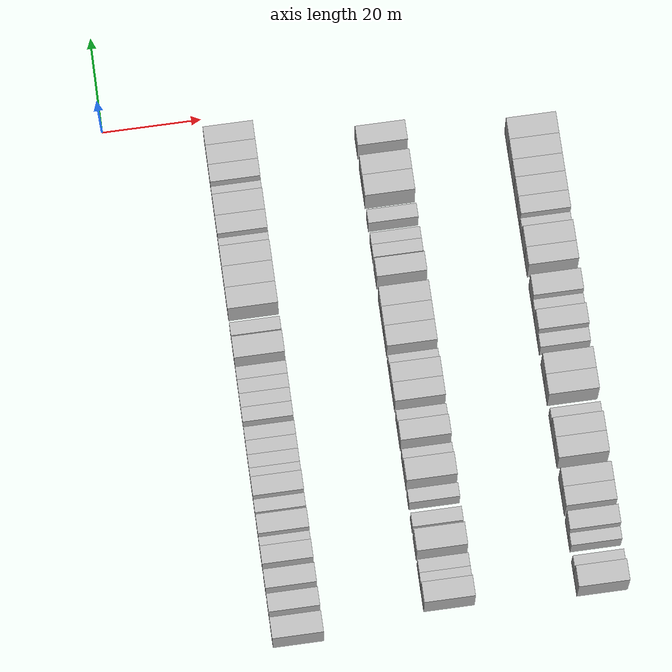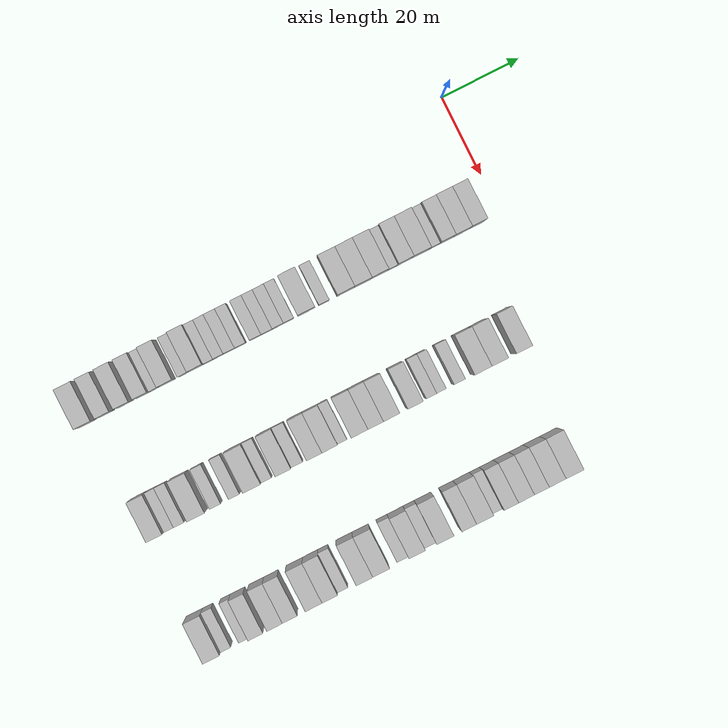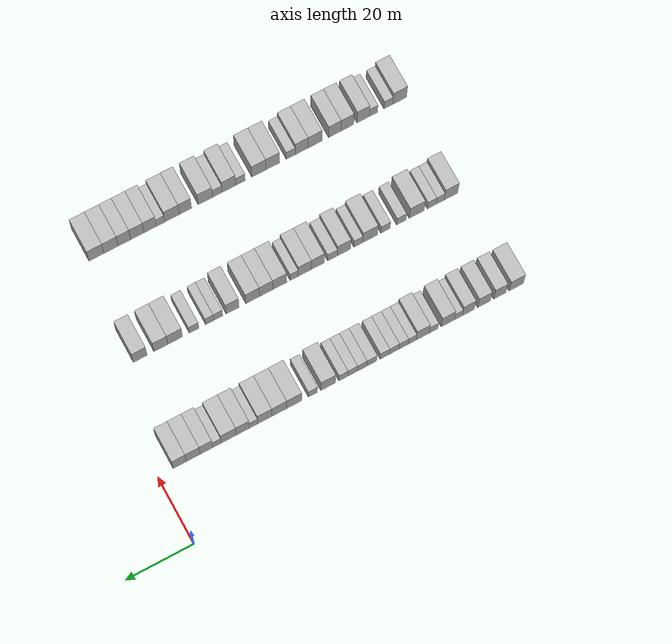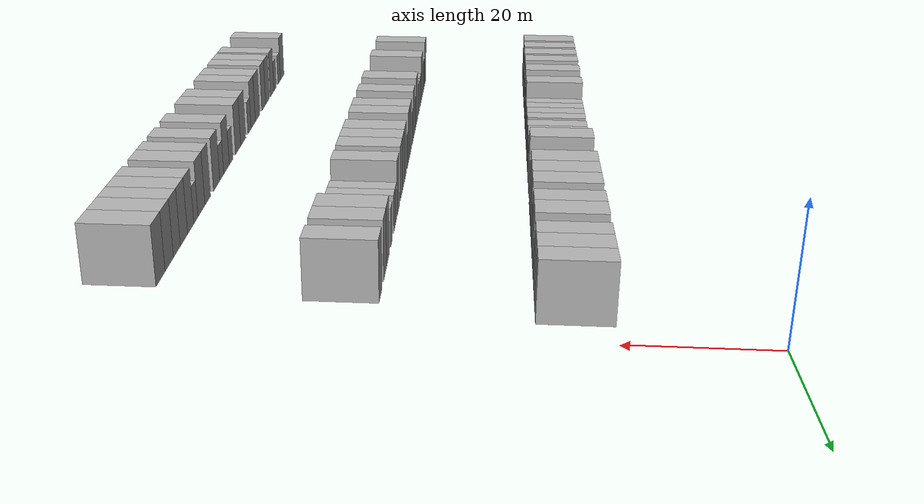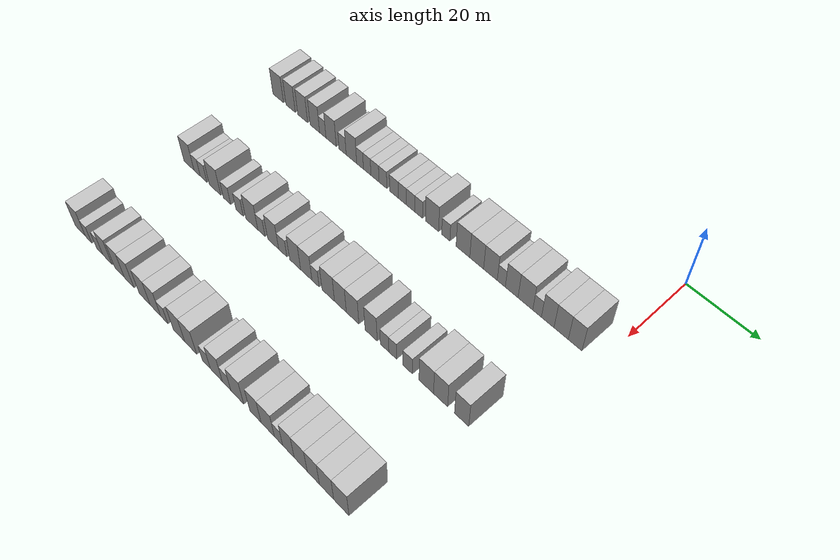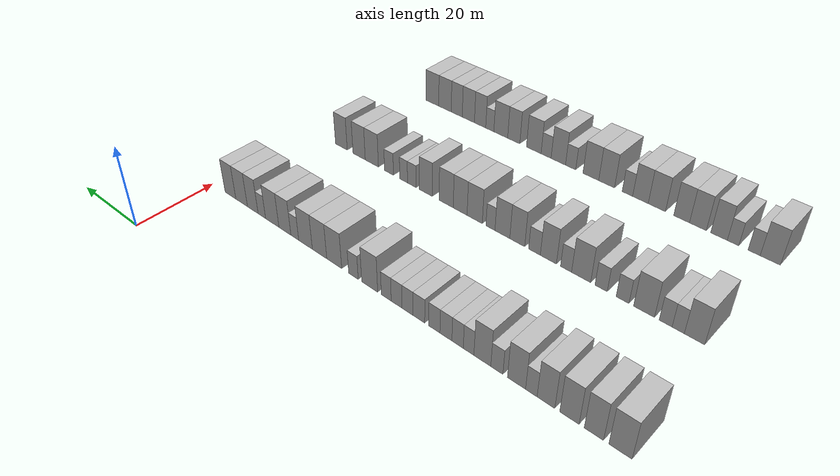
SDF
<sdf version="1.6">
 <world name="default">
  <model name="building_91">
   <static>1</static>
   <pose>25.0000 -106.7778 0 0.000000 0.000000 0.000000</pose>
   <link name="link">
    <pose>0 0 4.50 0 0 0</pose>
    <collision name="collision"><geometry><box><size>10.0000 4.2795 9.0000</size></box></geometry></collision>
    <visual name="visual">
     <cast_shadows>0</cast_shadows>
     <geometry><box><size>10.0000 4.2795 9.0000</size></box></geometry>
     <material>
      <script>
       <uri>model://HANNAS_wall/materials/scripts</uri>
       <uri>model://HANNAS_wall/materials/textures</uri>
       <name>vrc/HANNAS_wall</name>
      </script>
     </material>
    </visual>
   </link>
  </model>
  <model name="building_92">
   <static>1</static>
   <pose>25.0000 -101.7924 0 0.000000 0.000000 0.000000</pose>
   <link name="link">
    <pose>0 0 4.50 0 0 0</pose>
    <collision name="collision"><geometry><box><size>10.0000 3.6915 9.0000</size></box></geometry></collision>
    <visual name="visual">
     <cast_shadows>0</cast_shadows>
     <geometry><box><size>10.0000 3.6915 9.0000</size></box></geometry>
     <material>
      <script>
       <uri>model://HANNAS_wall/materials/scripts</uri>
       <uri>model://HANNAS_wall/materials/textures</uri>
       <name>vrc/HANNAS_wall</name>
      </script>
     </material>
    </visual>
   </link>
  </model>
  <model name="building_93">
   <static>1</static>
   <pose>25.0000 -97.0252 0 0.000000 0.000000 0.000000</pose>
   <link name="link">
    <pose>0 0 4.50 0 0 0</pose>
    <collision name="collision"><geometry><box><size>10.0000 3.8429 9.0000</size></box></geometry></collision>
    <visual name="visual">
     <cast_shadows>0</cast_shadows>
     <geometry><box><size>10.0000 3.8429 9.0000</size></box></geometry>
     <material>
      <script>
       <uri>model://HANNAS_wall/materials/scripts</uri>
       <uri>model://HANNAS_wall/materials/textures</uri>
       <name>vrc/HANNAS_wall</name>
      </script>
     </material>
    </visual>
   </link>
  </model>
  <model name="building_94">
   <static>1</static>
   <pose>25.0000 -92.2825 0 0.000000 0.000000 0.000000</pose>
   <link name="link">
    <pose>0 0 4.50 0 0 0</pose>
    <collision name="collision"><geometry><box><size>10.0000 3.6425 9.0000</size></box></geometry></collision>
    <visual name="visual">
     <cast_shadows>0</cast_shadows>
     <geometry><box><size>10.0000 3.6425 9.0000</size></box></geometry>
     <material>
      <script>
       <uri>model://HANNAS_wall/materials/scripts</uri>
       <uri>model://HANNAS_wall/materials/textures</uri>
       <name>vrc/HANNAS_wall</name>
      </script>
     </material>
    </visual>
   </link>
  </model>
  <model name="building_95">
   <static>1</static>
   <pose>25.0000 -89.2472 0 0.000000 0.000000 0.000000</pose>
   <link name="link">
    <pose>0 0 3.00 0 0 0</pose>
    <collision name="collision"><geometry><box><size>10.0000 2.4281 6.0000</size></box></geometry></collision>
    <visual name="visual">
     <cast_shadows>0</cast_shadows>
     <geometry><box><size>10.0000 2.4281 6.0000</size></box></geometry>
     <material>
      <script>
       <uri>model://HANNAS_wall/materials/scripts</uri>
       <uri>model://HANNAS_wall/materials/textures</uri>
       <name>vrc/HANNAS_wall</name>
      </script>
     </material>
    </visual>
   </link>
  </model>
  <model name="building_96">
   <static>1</static>
   <pose>25.0000 -86.0842 0 0.000000 0.000000 0.000000</pose>
   <link name="link">
    <pose>0 0 4.50 0 0 0</pose>
    <collision name="collision"><geometry><box><size>10.0000 3.8978 9.0000</size></box></geometry></collision>
    <visual name="visual">
     <cast_shadows>0</cast_shadows>
     <geometry><box><size>10.0000 3.8978 9.0000</size></box></geometry>
     <material>
      <script>
       <uri>model://HANNAS_wall/materials/scripts</uri>
       <uri>model://HANNAS_wall/materials/textures</uri>
       <name>vrc/HANNAS_wall</name>
      </script>
     </material>
    </visual>
   </link>
  </model>
  <model name="building_97">
   <static>1</static>
   <pose>25.0000 -81.7932 0 0.000000 0.000000 0.000000</pose>
   <link name="link">
    <pose>0 0 3.00 0 0 0</pose>
    <collision name="collision"><geometry><box><size>10.0000 2.6843 6.0000</size></box></geometry></collision>
    <visual name="visual">
     <cast_shadows>0</cast_shadows>
     <geometry><box><size>10.0000 2.6843 6.0000</size></box></geometry>
     <material>
      <script>
       <uri>model://HANNAS_wall/materials/scripts</uri>
       <uri>model://HANNAS_wall/materials/textures</uri>
       <name>vrc/HANNAS_wall</name>
      </script>
     </material>
    </visual>
   </link>
  </model>
  <model name="building_98">
   <static>1</static>
   <pose>25.0000 -78.5256 0 0.000000 0.000000 0.000000</pose>
   <link name="link">
    <pose>0 0 4.50 0 0 0</pose>
    <collision name="collision"><geometry><box><size>10.0000 3.8510 9.0000</size></box></geometry></collision>
    <visual name="visual">
     <cast_shadows>0</cast_shadows>
     <geometry><box><size>10.0000 3.8510 9.0000</size></box></geometry>
     <material>
      <script>
       <uri>model://HANNAS_wall/materials/scripts</uri>
       <uri>model://HANNAS_wall/materials/textures</uri>
       <name>vrc/HANNAS_wall</name>
      </script>
     </material>
    </visual>
   </link>
  </model>
  <model name="building_99">
   <static>1</static>
   <pose>25.0000 -75.3642 0 0.000000 0.000000 0.000000</pose>
   <link name="link">
    <pose>0 0 3.00 0 0 0</pose>
    <collision name="collision"><geometry><box><size>10.0000 2.4718 6.0000</size></box></geometry></collision>
    <visual name="visual">
     <cast_shadows>0</cast_shadows>
     <geometry><box><size>10.0000 2.4718 6.0000</size></box></geometry>
     <material>
      <script>
       <uri>model://HANNAS_wall/materials/scripts</uri>
       <uri>model://HANNAS_wall/materials/textures</uri>
       <name>vrc/HANNAS_wall</name>
      </script>
     </material>
    </visual>
   </link>
  </model>
  <model name="building_100">
   <static>1</static>
   <pose>25.0000 -72.7832 0 0.000000 0.000000 0.000000</pose>
   <link name="link">
    <pose>0 0 3.00 0 0 0</pose>
    <collision name="collision"><geometry><box><size>10.0000 2.6902 6.0000</size></box></geometry></collision>
    <visual name="visual">
     <cast_shadows>0</cast_shadows>
     <geometry><box><size>10.0000 2.6902 6.0000</size></box></geometry>
     <material>
      <script>
       <uri>model://HANNAS_wall/materials/scripts</uri>
       <uri>model://HANNAS_wall/materials/textures</uri>
       <name>vrc/HANNAS_wall</name>
      </script>
     </material>
    </visual>
   </link>
  </model>
  <model name="building_101">
   <static>1</static>
   <pose>25.0000 -69.9944 0 0.000000 0.000000 0.000000</pose>
   <link name="link">
    <pose>0 0 3.00 0 0 0</pose>
    <collision name="collision"><geometry><box><size>10.0000 2.8875 6.0000</size></box></geometry></collision>
    <visual name="visual">
     <cast_shadows>0</cast_shadows>
     <geometry><box><size>10.0000 2.8875 6.0000</size></box></geometry>
     <material>
      <script>
       <uri>model://HANNAS_wall/materials/scripts</uri>
       <uri>model://HANNAS_wall/materials/textures</uri>
       <name>vrc/HANNAS_wall</name>
      </script>
     </material>
    </visual>
   </link>
  </model>
  <model name="building_102">
   <static>1</static>
   <pose>25.0000 -67.1637 0 0.000000 0.000000 0.000000</pose>
   <link name="link">
    <pose>0 0 3.00 0 0 0</pose>
    <collision name="collision"><geometry><box><size>10.0000 2.7739 6.0000</size></box></geometry></collision>
    <visual name="visual">
     <cast_shadows>0</cast_shadows>
     <geometry><box><size>10.0000 2.7739 6.0000</size></box></geometry>
     <material>
      <script>
       <uri>model://HANNAS_wall/materials/scripts</uri>
       <uri>model://HANNAS_wall/materials/textures</uri>
       <name>vrc/HANNAS_wall</name>
      </script>
     </material>
    </visual>
   </link>
  </model>
  <model name="building_103">
   <static>1</static>
   <pose>25.0000 -63.2922 0 0.000000 0.000000 0.000000</pose>
   <link name="link">
    <pose>0 0 3.00 0 0 0</pose>
    <collision name="collision"><geometry><box><size>10.0000 2.9691 6.0000</size></box></geometry></collision>
    <visual name="visual">
     <cast_shadows>0</cast_shadows>
     <geometry><box><size>10.0000 2.9691 6.0000</size></box></geometry>
     <material>
      <script>
       <uri>model://HANNAS_wall/materials/scripts</uri>
       <uri>model://HANNAS_wall/materials/textures</uri>
       <name>vrc/HANNAS_wall</name>
      </script>
     </material>
    </visual>
   </link>
  </model>
  <model name="building_104">
   <static>1</static>
   <pose>25.0000 -60.3964 0 0.000000 0.000000 0.000000</pose>
   <link name="link">
    <pose>0 0 3.00 0 0 0</pose>
    <collision name="collision"><geometry><box><size>10.0000 2.8226 6.0000</size></box></geometry></collision>
    <visual name="visual">
     <cast_shadows>0</cast_shadows>
     <geometry><box><size>10.0000 2.8226 6.0000</size></box></geometry>
     <material>
      <script>
       <uri>model://HANNAS_wall/materials/scripts</uri>
       <uri>model://HANNAS_wall/materials/textures</uri>
       <name>vrc/HANNAS_wall</name>
      </script>
     </material>
    </visual>
   </link>
  </model>
  <model name="building_105">
   <static>1</static>
   <pose>25.0000 -57.5580 0 0.000000 0.000000 0.000000</pose>
   <link name="link">
    <pose>0 0 3.00 0 0 0</pose>
    <collision name="collision"><geometry><box><size>10.0000 2.8541 6.0000</size></box></geometry></collision>
    <visual name="visual">
     <cast_shadows>0</cast_shadows>
     <geometry><box><size>10.0000 2.8541 6.0000</size></box></geometry>
     <material>
      <script>
       <uri>model://HANNAS_wall/materials/scripts</uri>
       <uri>model://HANNAS_wall/materials/textures</uri>
       <name>vrc/HANNAS_wall</name>
      </script>
     </material>
    </visual>
   </link>
  </model>
  <model name="building_106">
   <static>1</static>
   <pose>25.0000 -54.8128 0 0.000000 0.000000 0.000000</pose>
   <link name="link">
    <pose>0 0 3.00 0 0 0</pose>
    <collision name="collision"><geometry><box><size>10.0000 2.6364 6.0000</size></box></geometry></collision>
    <visual name="visual">
     <cast_shadows>0</cast_shadows>
     <geometry><box><size>10.0000 2.6364 6.0000</size></box></geometry>
     <material>
      <script>
       <uri>model://HANNAS_wall/materials/scripts</uri>
       <uri>model://HANNAS_wall/materials/textures</uri>
       <name>vrc/HANNAS_wall</name>
      </script>
     </material>
    </visual>
   </link>
  </model>
  <model name="building_107">
   <static>1</static>
   <pose>25.0000 -50.3015 0 0.000000 0.000000 0.000000</pose>
   <link name="link">
    <pose>0 0 4.50 0 0 0</pose>
    <collision name="collision"><geometry><box><size>10.0000 4.3863 9.0000</size></box></geometry></collision>
    <visual name="visual">
     <cast_shadows>0</cast_shadows>
     <geometry><box><size>10.0000 4.3863 9.0000</size></box></geometry>
     <material>
      <script>
       <uri>model://HANNAS_wall/materials/scripts</uri>
       <uri>model://HANNAS_wall/materials/textures</uri>
       <name>vrc/HANNAS_wall</name>
      </script>
     </material>
    </visual>
   </link>
  </model>
  <model name="building_108">
   <static>1</static>
   <pose>25.0000 -45.7593 0 0.000000 0.000000 0.000000</pose>
   <link name="link">
    <pose>0 0 3.00 0 0 0</pose>
    <collision name="collision"><geometry><box><size>10.0000 2.6980 6.0000</size></box></geometry></collision>
    <visual name="visual">
     <cast_shadows>0</cast_shadows>
     <geometry><box><size>10.0000 2.6980 6.0000</size></box></geometry>
     <material>
      <script>
       <uri>model://HANNAS_wall/materials/scripts</uri>
       <uri>model://HANNAS_wall/materials/textures</uri>
       <name>vrc/HANNAS_wall</name>
      </script>
     </material>
    </visual>
   </link>
  </model>
  <model name="building_109">
   <static>1</static>
   <pose>25.0000 -40.2060 0 0.000000 0.000000 0.000000</pose>
   <link name="link">
    <pose>0 0 4.50 0 0 0</pose>
    <collision name="collision"><geometry><box><size>10.0000 4.4086 9.0000</size></box></geometry></collision>
    <visual name="visual">
     <cast_shadows>0</cast_shadows>
     <geometry><box><size>10.0000 4.4086 9.0000</size></box></geometry>
     <material>
      <script>
       <uri>model://HANNAS_wall/materials/scripts</uri>
       <uri>model://HANNAS_wall/materials/textures</uri>
       <name>vrc/HANNAS_wall</name>
      </script>
     </material>
    </visual>
   </link>
  </model>
  <model name="building_110">
   <static>1</static>
   <pose>25.0000 -35.8240 0 0.000000 0.000000 0.000000</pose>
   <link name="link">
    <pose>0 0 4.50 0 0 0</pose>
    <collision name="collision"><geometry><box><size>10.0000 4.3554 9.0000</size></box></geometry></collision>
    <visual name="visual">
     <cast_shadows>0</cast_shadows>
     <geometry><box><size>10.0000 4.3554 9.0000</size></box></geometry>
     <material>
      <script>
       <uri>model://HANNAS_wall/materials/scripts</uri>
       <uri>model://HANNAS_wall/materials/textures</uri>
       <name>vrc/HANNAS_wall</name>
      </script>
     </material>
    </visual>
   </link>
  </model>
  <model name="building_111">
   <static>1</static>
   <pose>25.0000 -31.5263 0 0.000000 0.000000 0.000000</pose>
   <link name="link">
    <pose>0 0 4.50 0 0 0</pose>
    <collision name="collision"><geometry><box><size>10.0000 4.2400 9.0000</size></box></geometry></collision>
    <visual name="visual">
     <cast_shadows>0</cast_shadows>
     <geometry><box><size>10.0000 4.2400 9.0000</size></box></geometry>
     <material>
      <script>
       <uri>model://HANNAS_wall/materials/scripts</uri>
       <uri>model://HANNAS_wall/materials/textures</uri>
       <name>vrc/HANNAS_wall</name>
      </script>
     </material>
    </visual>
   </link>
  </model>
  <model name="building_112">
   <static>1</static>
   <pose>25.0000 -28.1689 0 0.000000 0.000000 0.000000</pose>
   <link name="link">
    <pose>0 0 3.00 0 0 0</pose>
    <collision name="collision"><geometry><box><size>10.0000 2.4749 6.0000</size></box></geometry></collision>
    <visual name="visual">
     <cast_shadows>0</cast_shadows>
     <geometry><box><size>10.0000 2.4749 6.0000</size></box></geometry>
     <material>
      <script>
       <uri>model://HANNAS_wall/materials/scripts</uri>
       <uri>model://HANNAS_wall/materials/textures</uri>
       <name>vrc/HANNAS_wall</name>
      </script>
     </material>
    </visual>
   </link>
  </model>
  <model name="building_113">
   <static>1</static>
   <pose>25.0000 -24.9997 0 0.000000 0.000000 0.000000</pose>
   <link name="link">
    <pose>0 0 4.50 0 0 0</pose>
    <collision name="collision"><geometry><box><size>10.0000 3.8635 9.0000</size></box></geometry></collision>
    <visual name="visual">
     <cast_shadows>0</cast_shadows>
     <geometry><box><size>10.0000 3.8635 9.0000</size></box></geometry>
     <material>
      <script>
       <uri>model://HANNAS_wall/materials/scripts</uri>
       <uri>model://HANNAS_wall/materials/textures</uri>
       <name>vrc/HANNAS_wall</name>
      </script>
     </material>
    </visual>
   </link>
  </model>
  <model name="building_114">
   <static>1</static>
   <pose>25.0000 -20.8600 0 0.000000 0.000000 0.000000</pose>
   <link name="link">
    <pose>0 0 4.50 0 0 0</pose>
    <collision name="collision"><geometry><box><size>10.0000 4.4158 9.0000</size></box></geometry></collision>
    <visual name="visual">
     <cast_shadows>0</cast_shadows>
     <geometry><box><size>10.0000 4.4158 9.0000</size></box></geometry>
     <material>
      <script>
       <uri>model://HANNAS_wall/materials/scripts</uri>
       <uri>model://HANNAS_wall/materials/textures</uri>
       <name>vrc/HANNAS_wall</name>
      </script>
     </material>
    </visual>
   </link>
  </model>
  <model name="building_115">
   <static>1</static>
   <pose>25.0000 -17.3838 0 0.000000 0.000000 0.000000</pose>
   <link name="link">
    <pose>0 0 3.00 0 0 0</pose>
    <collision name="collision"><geometry><box><size>10.0000 2.5366 6.0000</size></box></geometry></collision>
    <visual name="visual">
     <cast_shadows>0</cast_shadows>
     <geometry><box><size>10.0000 2.5366 6.0000</size></box></geometry>
     <material>
      <script>
       <uri>model://HANNAS_wall/materials/scripts</uri>
       <uri>model://HANNAS_wall/materials/textures</uri>
       <name>vrc/HANNAS_wall</name>
      </script>
     </material>
    </visual>
   </link>
  </model>
  <model name="building_116">
   <static>1</static>
   <pose>25.0000 -14.2850 0 0.000000 0.000000 0.000000</pose>
   <link name="link">
    <pose>0 0 4.50 0 0 0</pose>
    <collision name="collision"><geometry><box><size>10.0000 3.6611 9.0000</size></box></geometry></collision>
    <visual name="visual">
     <cast_shadows>0</cast_shadows>
     <geometry><box><size>10.0000 3.6611 9.0000</size></box></geometry>
     <material>
      <script>
       <uri>model://HANNAS_wall/materials/scripts</uri>
       <uri>model://HANNAS_wall/materials/textures</uri>
       <name>vrc/HANNAS_wall</name>
      </script>
     </material>
    </visual>
   </link>
  </model>
  <model name="building_117">
   <static>1</static>
   <pose>25.0000 -10.4100 0 0.000000 0.000000 0.000000</pose>
   <link name="link">
    <pose>0 0 4.50 0 0 0</pose>
    <collision name="collision"><geometry><box><size>10.0000 4.0889 9.0000</size></box></geometry></collision>
    <visual name="visual">
     <cast_shadows>0</cast_shadows>
     <geometry><box><size>10.0000 4.0889 9.0000</size></box></geometry>
     <material>
      <script>
       <uri>model://HANNAS_wall/materials/scripts</uri>
       <uri>model://HANNAS_wall/materials/textures</uri>
       <name>vrc/HANNAS_wall</name>
      </script>
     </material>
    </visual>
   </link>
  </model>
  <model name="building_118">
   <static>1</static>
   <pose>25.0000 -6.4322 0 0.000000 0.000000 0.000000</pose>
   <link name="link">
    <pose>0 0 4.50 0 0 0</pose>
    <collision name="collision"><geometry><box><size>10.0000 3.8666 9.0000</size></box></geometry></collision>
    <visual name="visual">
     <cast_shadows>0</cast_shadows>
     <geometry><box><size>10.0000 3.8666 9.0000</size></box></geometry>
     <material>
      <script>
       <uri>model://HANNAS_wall/materials/scripts</uri>
       <uri>model://HANNAS_wall/materials/textures</uri>
       <name>vrc/HANNAS_wall</name>
      </script>
     </material>
    </visual>
   </link>
  </model>
  <model name="building_312">
   <static>1</static>
   <pose>55.0000 -103.8601 0 0.000000 0.000000 0.000000</pose>
   <link name="link">
    <pose>0 0 4.50 0 0 0</pose>
    <collision name="collision"><geometry><box><size>10.0000 4.0819 9.0000</size></box></geometry></collision>
    <visual name="visual">
     <cast_shadows>0</cast_shadows>
     <geometry><box><size>10.0000 4.0819 9.0000</size></box></geometry>
     <material>
      <script>
       <uri>model://HANNAS_wall/materials/scripts</uri>
       <uri>model://HANNAS_wall/materials/textures</uri>
       <name>vrc/HANNAS_wall</name>
      </script>
     </material>
    </visual>
   </link>
  </model>
  <model name="building_313">
   <static>1</static>
   <pose>55.0000 -100.5727 0 0.000000 0.000000 0.000000</pose>
   <link name="link">
    <pose>0 0 3.00 0 0 0</pose>
    <collision name="collision"><geometry><box><size>10.0000 2.4929 6.0000</size></box></geometry></collision>
    <visual name="visual">
     <cast_shadows>0</cast_shadows>
     <geometry><box><size>10.0000 2.4929 6.0000</size></box></geometry>
     <material>
      <script>
       <uri>model://HANNAS_wall/materials/scripts</uri>
       <uri>model://HANNAS_wall/materials/textures</uri>
       <name>vrc/HANNAS_wall</name>
      </script>
     </material>
    </visual>
   </link>
  </model>
  <model name="building_314">
   <static>1</static>
   <pose>55.0000 -97.9906 0 0.000000 0.000000 0.000000</pose>
   <link name="link">
    <pose>0 0 3.00 0 0 0</pose>
    <collision name="collision"><geometry><box><size>10.0000 2.6713 6.0000</size></box></geometry></collision>
    <visual name="visual">
     <cast_shadows>0</cast_shadows>
     <geometry><box><size>10.0000 2.6713 6.0000</size></box></geometry>
     <material>
      <script>
       <uri>model://HANNAS_wall/materials/scripts</uri>
       <uri>model://HANNAS_wall/materials/textures</uri>
       <name>vrc/HANNAS_wall</name>
      </script>
     </material>
    </visual>
   </link>
  </model>
  <model name="building_315">
   <static>1</static>
   <pose>55.0000 -93.4154 0 0.000000 0.000000 0.000000</pose>
   <link name="link">
    <pose>0 0 4.50 0 0 0</pose>
    <collision name="collision"><geometry><box><size>10.0000 4.4792 9.0000</size></box></geometry></collision>
    <visual name="visual">
     <cast_shadows>0</cast_shadows>
     <geometry><box><size>10.0000 4.4792 9.0000</size></box></geometry>
     <material>
      <script>
       <uri>model://HANNAS_wall/materials/scripts</uri>
       <uri>model://HANNAS_wall/materials/textures</uri>
       <name>vrc/HANNAS_wall</name>
      </script>
     </material>
    </visual>
   </link>
  </model>
  <model name="building_316">
   <static>1</static>
   <pose>55.0000 -88.7587 0 0.000000 0.000000 0.000000</pose>
   <link name="link">
    <pose>0 0 3.00 0 0 0</pose>
    <collision name="collision"><geometry><box><size>10.0000 2.8342 6.0000</size></box></geometry></collision>
    <visual name="visual">
     <cast_shadows>0</cast_shadows>
     <geometry><box><size>10.0000 2.8342 6.0000</size></box></geometry>
     <material>
      <script>
       <uri>model://HANNAS_wall/materials/scripts</uri>
       <uri>model://HANNAS_wall/materials/textures</uri>
       <name>vrc/HANNAS_wall</name>
      </script>
     </material>
    </visual>
   </link>
  </model>
  <model name="building_317">
   <static>1</static>
   <pose>55.0000 -83.9440 0 0.000000 0.000000 0.000000</pose>
   <link name="link">
    <pose>0 0 3.00 0 0 0</pose>
    <collision name="collision"><geometry><box><size>10.0000 2.7952 6.0000</size></box></geometry></collision>
    <visual name="visual">
     <cast_shadows>0</cast_shadows>
     <geometry><box><size>10.0000 2.7952 6.0000</size></box></geometry>
     <material>
      <script>
       <uri>model://HANNAS_wall/materials/scripts</uri>
       <uri>model://HANNAS_wall/materials/textures</uri>
       <name>vrc/HANNAS_wall</name>
      </script>
     </material>
    </visual>
   </link>
  </model>
  <model name="building_318">
   <static>1</static>
   <pose>55.0000 -79.3035 0 0.000000 0.000000 0.000000</pose>
   <link name="link">
    <pose>0 0 4.50 0 0 0</pose>
    <collision name="collision"><geometry><box><size>10.0000 4.4859 9.0000</size></box></geometry></collision>
    <visual name="visual">
     <cast_shadows>0</cast_shadows>
     <geometry><box><size>10.0000 4.4859 9.0000</size></box></geometry>
     <material>
      <script>
       <uri>model://HANNAS_wall/materials/scripts</uri>
       <uri>model://HANNAS_wall/materials/textures</uri>
       <name>vrc/HANNAS_wall</name>
      </script>
     </material>
    </visual>
   </link>
  </model>
  <model name="building_319">
   <static>1</static>
   <pose>55.0000 -75.7326 0 0.000000 0.000000 0.000000</pose>
   <link name="link">
    <pose>0 0 3.00 0 0 0</pose>
    <collision name="collision"><geometry><box><size>10.0000 2.6559 6.0000</size></box></geometry></collision>
    <visual name="visual">
     <cast_shadows>0</cast_shadows>
     <geometry><box><size>10.0000 2.6559 6.0000</size></box></geometry>
     <material>
      <script>
       <uri>model://HANNAS_wall/materials/scripts</uri>
       <uri>model://HANNAS_wall/materials/textures</uri>
       <name>vrc/HANNAS_wall</name>
      </script>
     </material>
    </visual>
   </link>
  </model>
  <model name="building_320">
   <static>1</static>
   <pose>55.0000 -71.4137 0 0.000000 0.000000 0.000000</pose>
   <link name="link">
    <pose>0 0 4.50 0 0 0</pose>
    <collision name="collision"><geometry><box><size>10.0000 3.9818 9.0000</size></box></geometry></collision>
    <visual name="visual">
     <cast_shadows>0</cast_shadows>
     <geometry><box><size>10.0000 3.9818 9.0000</size></box></geometry>
     <material>
      <script>
       <uri>model://HANNAS_wall/materials/scripts</uri>
       <uri>model://HANNAS_wall/materials/textures</uri>
       <name>vrc/HANNAS_wall</name>
      </script>
     </material>
    </visual>
   </link>
  </model>
  <model name="building_321">
   <static>1</static>
   <pose>55.0000 -67.9455 0 0.000000 0.000000 0.000000</pose>
   <link name="link">
    <pose>0 0 3.00 0 0 0</pose>
    <collision name="collision"><geometry><box><size>10.0000 2.9547 6.0000</size></box></geometry></collision>
    <visual name="visual">
     <cast_shadows>0</cast_shadows>
     <geometry><box><size>10.0000 2.9547 6.0000</size></box></geometry>
     <material>
      <script>
       <uri>model://HANNAS_wall/materials/scripts</uri>
       <uri>model://HANNAS_wall/materials/textures</uri>
       <name>vrc/HANNAS_wall</name>
      </script>
     </material>
    </visual>
   </link>
  </model>
  <model name="building_322">
   <static>1</static>
   <pose>55.0000 -63.5401 0 0.000000 0.000000 0.000000</pose>
   <link name="link">
    <pose>0 0 4.50 0 0 0</pose>
    <collision name="collision"><geometry><box><size>10.0000 3.8562 9.0000</size></box></geometry></collision>
    <visual name="visual">
     <cast_shadows>0</cast_shadows>
     <geometry><box><size>10.0000 3.8562 9.0000</size></box></geometry>
     <material>
      <script>
       <uri>model://HANNAS_wall/materials/scripts</uri>
       <uri>model://HANNAS_wall/materials/textures</uri>
       <name>vrc/HANNAS_wall</name>
      </script>
     </material>
    </visual>
   </link>
  </model>
  <model name="building_323">
   <static>1</static>
   <pose>55.0000 -59.6403 0 0.000000 0.000000 0.000000</pose>
   <link name="link">
    <pose>0 0 4.50 0 0 0</pose>
    <collision name="collision"><geometry><box><size>10.0000 3.9432 9.0000</size></box></geometry></collision>
    <visual name="visual">
     <cast_shadows>0</cast_shadows>
     <geometry><box><size>10.0000 3.9432 9.0000</size></box></geometry>
     <material>
      <script>
       <uri>model://HANNAS_wall/materials/scripts</uri>
       <uri>model://HANNAS_wall/materials/textures</uri>
       <name>vrc/HANNAS_wall</name>
      </script>
     </material>
    </visual>
   </link>
  </model>
  <model name="building_324">
   <static>1</static>
   <pose>55.0000 -56.4452 0 0.000000 0.000000 0.000000</pose>
   <link name="link">
    <pose>0 0 3.00 0 0 0</pose>
    <collision name="collision"><geometry><box><size>10.0000 2.4470 6.0000</size></box></geometry></collision>
    <visual name="visual">
     <cast_shadows>0</cast_shadows>
     <geometry><box><size>10.0000 2.4470 6.0000</size></box></geometry>
     <material>
      <script>
       <uri>model://HANNAS_wall/materials/scripts</uri>
       <uri>model://HANNAS_wall/materials/textures</uri>
       <name>vrc/HANNAS_wall</name>
      </script>
     </material>
    </visual>
   </link>
  </model>
  <model name="building_325">
   <static>1</static>
   <pose>55.0000 -52.1092 0 0.000000 0.000000 0.000000</pose>
   <link name="link">
    <pose>0 0 4.50 0 0 0</pose>
    <collision name="collision"><geometry><box><size>10.0000 4.2250 9.0000</size></box></geometry></collision>
    <visual name="visual">
     <cast_shadows>0</cast_shadows>
     <geometry><box><size>10.0000 4.2250 9.0000</size></box></geometry>
     <material>
      <script>
       <uri>model://HANNAS_wall/materials/scripts</uri>
       <uri>model://HANNAS_wall/materials/textures</uri>
       <name>vrc/HANNAS_wall</name>
      </script>
     </material>
    </visual>
   </link>
  </model>
  <model name="building_326">
   <static>1</static>
   <pose>55.0000 -48.0290 0 0.000000 0.000000 0.000000</pose>
   <link name="link">
    <pose>0 0 4.50 0 0 0</pose>
    <collision name="collision"><geometry><box><size>10.0000 3.9355 9.0000</size></box></geometry></collision>
    <visual name="visual">
     <cast_shadows>0</cast_shadows>
     <geometry><box><size>10.0000 3.9355 9.0000</size></box></geometry>
     <material>
      <script>
       <uri>model://HANNAS_wall/materials/scripts</uri>
       <uri>model://HANNAS_wall/materials/textures</uri>
       <name>vrc/HANNAS_wall</name>
      </script>
     </material>
    </visual>
   </link>
  </model>
  <model name="building_327">
   <static>1</static>
   <pose>55.0000 -43.9993 0 0.000000 0.000000 0.000000</pose>
   <link name="link">
    <pose>0 0 4.50 0 0 0</pose>
    <collision name="collision"><geometry><box><size>10.0000 4.1238 9.0000</size></box></geometry></collision>
    <visual name="visual">
     <cast_shadows>0</cast_shadows>
     <geometry><box><size>10.0000 4.1238 9.0000</size></box></geometry>
     <material>
      <script>
       <uri>model://HANNAS_wall/materials/scripts</uri>
       <uri>model://HANNAS_wall/materials/textures</uri>
       <name>vrc/HANNAS_wall</name>
      </script>
     </material>
    </visual>
   </link>
  </model>
  <model name="building_328">
   <static>1</static>
   <pose>55.0000 -37.9970 0 0.000000 0.000000 0.000000</pose>
   <link name="link">
    <pose>0 0 4.50 0 0 0</pose>
    <collision name="collision"><geometry><box><size>10.0000 3.8810 9.0000</size></box></geometry></collision>
    <visual name="visual">
     <cast_shadows>0</cast_shadows>
     <geometry><box><size>10.0000 3.8810 9.0000</size></box></geometry>
     <material>
      <script>
       <uri>model://HANNAS_wall/materials/scripts</uri>
       <uri>model://HANNAS_wall/materials/textures</uri>
       <name>vrc/HANNAS_wall</name>
      </script>
     </material>
    </visual>
   </link>
  </model>
  <model name="building_329">
   <static>1</static>
   <pose>55.0000 -33.7167 0 0.000000 0.000000 0.000000</pose>
   <link name="link">
    <pose>0 0 3.00 0 0 0</pose>
    <collision name="collision"><geometry><box><size>10.0000 2.6795 6.0000</size></box></geometry></collision>
    <visual name="visual">
     <cast_shadows>0</cast_shadows>
     <geometry><box><size>10.0000 2.6795 6.0000</size></box></geometry>
     <material>
      <script>
       <uri>model://HANNAS_wall/materials/scripts</uri>
       <uri>model://HANNAS_wall/materials/textures</uri>
       <name>vrc/HANNAS_wall</name>
      </script>
     </material>
    </visual>
   </link>
  </model>
  <model name="building_330">
   <static>1</static>
   <pose>55.0000 -31.1664 0 0.000000 0.000000 0.000000</pose>
   <link name="link">
    <pose>0 0 3.00 0 0 0</pose>
    <collision name="collision"><geometry><box><size>10.0000 2.4212 6.0000</size></box></geometry></collision>
    <visual name="visual">
     <cast_shadows>0</cast_shadows>
     <geometry><box><size>10.0000 2.4212 6.0000</size></box></geometry>
     <material>
      <script>
       <uri>model://HANNAS_wall/materials/scripts</uri>
       <uri>model://HANNAS_wall/materials/textures</uri>
       <name>vrc/HANNAS_wall</name>
      </script>
     </material>
    </visual>
   </link>
  </model>
  <model name="building_331">
   <static>1</static>
   <pose>55.0000 -26.5256 0 0.000000 0.000000 0.000000</pose>
   <link name="link">
    <pose>0 0 3.00 0 0 0</pose>
    <collision name="collision"><geometry><box><size>10.0000 2.8605 6.0000</size></box></geometry></collision>
    <visual name="visual">
     <cast_shadows>0</cast_shadows>
     <geometry><box><size>10.0000 2.8605 6.0000</size></box></geometry>
     <material>
      <script>
       <uri>model://HANNAS_wall/materials/scripts</uri>
       <uri>model://HANNAS_wall/materials/textures</uri>
       <name>vrc/HANNAS_wall</name>
      </script>
     </material>
    </visual>
   </link>
  </model>
  <model name="building_332">
   <static>1</static>
   <pose>55.0000 -20.9171 0 0.000000 0.000000 0.000000</pose>
   <link name="link">
    <pose>0 0 4.50 0 0 0</pose>
    <collision name="collision"><geometry><box><size>10.0000 4.3565 9.0000</size></box></geometry></collision>
    <visual name="visual">
     <cast_shadows>0</cast_shadows>
     <geometry><box><size>10.0000 4.3565 9.0000</size></box></geometry>
     <material>
      <script>
       <uri>model://HANNAS_wall/materials/scripts</uri>
       <uri>model://HANNAS_wall/materials/textures</uri>
       <name>vrc/HANNAS_wall</name>
      </script>
     </material>
    </visual>
   </link>
  </model>
  <model name="building_333">
   <static>1</static>
   <pose>55.0000 -16.6730 0 0.000000 0.000000 0.000000</pose>
   <link name="link">
    <pose>0 0 4.50 0 0 0</pose>
    <collision name="collision"><geometry><box><size>10.0000 4.1317 9.0000</size></box></geometry></collision>
    <visual name="visual">
     <cast_shadows>0</cast_shadows>
     <geometry><box><size>10.0000 4.1317 9.0000</size></box></geometry>
     <material>
      <script>
       <uri>model://HANNAS_wall/materials/scripts</uri>
       <uri>model://HANNAS_wall/materials/textures</uri>
       <name>vrc/HANNAS_wall</name>
      </script>
     </material>
    </visual>
   </link>
  </model>
  <model name="building_334">
   <static>1</static>
   <pose>55.0000 -10.5635 0 0.000000 0.000000 0.000000</pose>
   <link name="link">
    <pose>0 0 4.50 0 0 0</pose>
    <collision name="collision"><geometry><box><size>10.0000 4.0872 9.0000</size></box></geometry></collision>
    <visual name="visual">
     <cast_shadows>0</cast_shadows>
     <geometry><box><size>10.0000 4.0872 9.0000</size></box></geometry>
     <material>
      <script>
       <uri>model://HANNAS_wall/materials/scripts</uri>
       <uri>model://HANNAS_wall/materials/textures</uri>
       <name>vrc/HANNAS_wall</name>
      </script>
     </material>
    </visual>
   </link>
  </model>
  <model name="building_525">
   <static>1</static>
   <pose>85.0000 -104.8205 0 0.000000 0.000000 0.000000</pose>
   <link name="link">
    <pose>0 0 4.50 0 0 0</pose>
    <collision name="collision"><geometry><box><size>10.0000 4.2558 9.0000</size></box></geometry></collision>
    <visual name="visual">
     <cast_shadows>0</cast_shadows>
     <geometry><box><size>10.0000 4.2558 9.0000</size></box></geometry>
     <material>
      <script>
       <uri>model://HANNAS_wall/materials/scripts</uri>
       <uri>model://HANNAS_wall/materials/textures</uri>
       <name>vrc/HANNAS_wall</name>
      </script>
     </material>
    </visual>
   </link>
  </model>
  <model name="building_526">
   <static>1</static>
   <pose>85.0000 -101.3775 0 0.000000 0.000000 0.000000</pose>
   <link name="link">
    <pose>0 0 3.00 0 0 0</pose>
    <collision name="collision"><geometry><box><size>10.0000 2.6301 6.0000</size></box></geometry></collision>
    <visual name="visual">
     <cast_shadows>0</cast_shadows>
     <geometry><box><size>10.0000 2.6301 6.0000</size></box></geometry>
     <material>
      <script>
       <uri>model://HANNAS_wall/materials/scripts</uri>
       <uri>model://HANNAS_wall/materials/textures</uri>
       <name>vrc/HANNAS_wall</name>
      </script>
     </material>
    </visual>
   </link>
  </model>
  <model name="building_527">
   <static>1</static>
   <pose>85.0000 -96.7907 0 0.000000 0.000000 0.000000</pose>
   <link name="link">
    <pose>0 0 3.00 0 0 0</pose>
    <collision name="collision"><geometry><box><size>10.0000 2.5435 6.0000</size></box></geometry></collision>
    <visual name="visual">
     <cast_shadows>0</cast_shadows>
     <geometry><box><size>10.0000 2.5435 6.0000</size></box></geometry>
     <material>
      <script>
       <uri>model://HANNAS_wall/materials/scripts</uri>
       <uri>model://HANNAS_wall/materials/textures</uri>
       <name>vrc/HANNAS_wall</name>
      </script>
     </material>
    </visual>
   </link>
  </model>
  <model name="building_528">
   <static>1</static>
   <pose>85.0000 -93.6421 0 0.000000 0.000000 0.000000</pose>
   <link name="link">
    <pose>0 0 4.50 0 0 0</pose>
    <collision name="collision"><geometry><box><size>10.0000 3.7537 9.0000</size></box></geometry></collision>
    <visual name="visual">
     <cast_shadows>0</cast_shadows>
     <geometry><box><size>10.0000 3.7537 9.0000</size></box></geometry>
     <material>
      <script>
       <uri>model://HANNAS_wall/materials/scripts</uri>
       <uri>model://HANNAS_wall/materials/textures</uri>
       <name>vrc/HANNAS_wall</name>
      </script>
     </material>
    </visual>
   </link>
  </model>
  <model name="building_529">
   <static>1</static>
   <pose>85.0000 -88.8160 0 0.000000 0.000000 0.000000</pose>
   <link name="link">
    <pose>0 0 4.50 0 0 0</pose>
    <collision name="collision"><geometry><box><size>10.0000 3.8987 9.0000</size></box></geometry></collision>
    <visual name="visual">
     <cast_shadows>0</cast_shadows>
     <geometry><box><size>10.0000 3.8987 9.0000</size></box></geometry>
     <material>
      <script>
       <uri>model://HANNAS_wall/materials/scripts</uri>
       <uri>model://HANNAS_wall/materials/textures</uri>
       <name>vrc/HANNAS_wall</name>
      </script>
     </material>
    </visual>
   </link>
  </model>
  <model name="building_530">
   <static>1</static>
   <pose>85.0000 -84.9854 0 0.000000 0.000000 0.000000</pose>
   <link name="link">
    <pose>0 0 4.50 0 0 0</pose>
    <collision name="collision"><geometry><box><size>10.0000 3.7624 9.0000</size></box></geometry></collision>
    <visual name="visual">
     <cast_shadows>0</cast_shadows>
     <geometry><box><size>10.0000 3.7624 9.0000</size></box></geometry>
     <material>
      <script>
       <uri>model://HANNAS_wall/materials/scripts</uri>
       <uri>model://HANNAS_wall/materials/textures</uri>
       <name>vrc/HANNAS_wall</name>
      </script>
     </material>
    </visual>
   </link>
  </model>
  <model name="building_531">
   <static>1</static>
   <pose>85.0000 -78.9883 0 0.000000 0.000000 0.000000</pose>
   <link name="link">
    <pose>0 0 4.50 0 0 0</pose>
    <collision name="collision"><geometry><box><size>10.0000 4.2318 9.0000</size></box></geometry></collision>
    <visual name="visual">
     <cast_shadows>0</cast_shadows>
     <geometry><box><size>10.0000 4.2318 9.0000</size></box></geometry>
     <material>
      <script>
       <uri>model://HANNAS_wall/materials/scripts</uri>
       <uri>model://HANNAS_wall/materials/textures</uri>
       <name>vrc/HANNAS_wall</name>
      </script>
     </material>
    </visual>
   </link>
  </model>
  <model name="building_532">
   <static>1</static>
   <pose>85.0000 -74.9089 0 0.000000 0.000000 0.000000</pose>
   <link name="link">
    <pose>0 0 4.50 0 0 0</pose>
    <collision name="collision"><geometry><box><size>10.0000 3.9271 9.0000</size></box></geometry></collision>
    <visual name="visual">
     <cast_shadows>0</cast_shadows>
     <geometry><box><size>10.0000 3.9271 9.0000</size></box></geometry>
     <material>
      <script>
       <uri>model://HANNAS_wall/materials/scripts</uri>
       <uri>model://HANNAS_wall/materials/textures</uri>
       <name>vrc/HANNAS_wall</name>
      </script>
     </material>
    </visual>
   </link>
  </model>
  <model name="building_533">
   <static>1</static>
   <pose>85.0000 -71.6011 0 0.000000 0.000000 0.000000</pose>
   <link name="link">
    <pose>0 0 3.00 0 0 0</pose>
    <collision name="collision"><geometry><box><size>10.0000 2.6885 6.0000</size></box></geometry></collision>
    <visual name="visual">
     <cast_shadows>0</cast_shadows>
     <geometry><box><size>10.0000 2.6885 6.0000</size></box></geometry>
     <material>
      <script>
       <uri>model://HANNAS_wall/materials/scripts</uri>
       <uri>model://HANNAS_wall/materials/textures</uri>
       <name>vrc/HANNAS_wall</name>
      </script>
     </material>
    </visual>
   </link>
  </model>
  <model name="building_534">
   <static>1</static>
   <pose>85.0000 -66.1693 0 0.000000 0.000000 0.000000</pose>
   <link name="link">
    <pose>0 0 4.50 0 0 0</pose>
    <collision name="collision"><geometry><box><size>10.0000 4.1750 9.0000</size></box></geometry></collision>
    <visual name="visual">
     <cast_shadows>0</cast_shadows>
     <geometry><box><size>10.0000 4.1750 9.0000</size></box></geometry>
     <material>
      <script>
       <uri>model://HANNAS_wall/materials/scripts</uri>
       <uri>model://HANNAS_wall/materials/textures</uri>
       <name>vrc/HANNAS_wall</name>
      </script>
     </material>
    </visual>
   </link>
  </model>
  <model name="building_535">
   <static>1</static>
   <pose>85.0000 -61.9427 0 0.000000 0.000000 0.000000</pose>
   <link name="link">
    <pose>0 0 4.50 0 0 0</pose>
    <collision name="collision"><geometry><box><size>10.0000 4.2783 9.0000</size></box></geometry></collision>
    <visual name="visual">
     <cast_shadows>0</cast_shadows>
     <geometry><box><size>10.0000 4.2783 9.0000</size></box></geometry>
     <material>
      <script>
       <uri>model://HANNAS_wall/materials/scripts</uri>
       <uri>model://HANNAS_wall/materials/textures</uri>
       <name>vrc/HANNAS_wall</name>
      </script>
     </material>
    </visual>
   </link>
  </model>
  <model name="building_536">
   <static>1</static>
   <pose>85.0000 -56.3812 0 0.000000 0.000000 0.000000</pose>
   <link name="link">
    <pose>0 0 3.00 0 0 0</pose>
    <collision name="collision"><geometry><box><size>10.0000 2.8446 6.0000</size></box></geometry></collision>
    <visual name="visual">
     <cast_shadows>0</cast_shadows>
     <geometry><box><size>10.0000 2.8446 6.0000</size></box></geometry>
     <material>
      <script>
       <uri>model://HANNAS_wall/materials/scripts</uri>
       <uri>model://HANNAS_wall/materials/textures</uri>
       <name>vrc/HANNAS_wall</name>
      </script>
     </material>
    </visual>
   </link>
  </model>
  <model name="building_537">
   <static>1</static>
   <pose>85.0000 -52.9014 0 0.000000 0.000000 0.000000</pose>
   <link name="link">
    <pose>0 0 4.50 0 0 0</pose>
    <collision name="collision"><geometry><box><size>10.0000 4.1150 9.0000</size></box></geometry></collision>
    <visual name="visual">
     <cast_shadows>0</cast_shadows>
     <geometry><box><size>10.0000 4.1150 9.0000</size></box></geometry>
     <material>
      <script>
       <uri>model://HANNAS_wall/materials/scripts</uri>
       <uri>model://HANNAS_wall/materials/textures</uri>
       <name>vrc/HANNAS_wall</name>
      </script>
     </material>
    </visual>
   </link>
  </model>
  <model name="building_538">
   <static>1</static>
   <pose>85.0000 -49.3952 0 0.000000 0.000000 0.000000</pose>
   <link name="link">
    <pose>0 0 3.00 0 0 0</pose>
    <collision name="collision"><geometry><box><size>10.0000 2.8975 6.0000</size></box></geometry></collision>
    <visual name="visual">
     <cast_shadows>0</cast_shadows>
     <geometry><box><size>10.0000 2.8975 6.0000</size></box></geometry>
     <material>
      <script>
       <uri>model://HANNAS_wall/materials/scripts</uri>
       <uri>model://HANNAS_wall/materials/textures</uri>
       <name>vrc/HANNAS_wall</name>
      </script>
     </material>
    </visual>
   </link>
  </model>
  <model name="building_539">
   <static>1</static>
   <pose>85.0000 -45.7851 0 0.000000 0.000000 0.000000</pose>
   <link name="link">
    <pose>0 0 4.50 0 0 0</pose>
    <collision name="collision"><geometry><box><size>10.0000 4.3228 9.0000</size></box></geometry></collision>
    <visual name="visual">
     <cast_shadows>0</cast_shadows>
     <geometry><box><size>10.0000 4.3228 9.0000</size></box></geometry>
     <material>
      <script>
       <uri>model://HANNAS_wall/materials/scripts</uri>
       <uri>model://HANNAS_wall/materials/textures</uri>
       <name>vrc/HANNAS_wall</name>
      </script>
     </material>
    </visual>
   </link>
  </model>
  <model name="building_540">
   <static>1</static>
   <pose>85.0000 -39.7694 0 0.000000 0.000000 0.000000</pose>
   <link name="link">
    <pose>0 0 4.50 0 0 0</pose>
    <collision name="collision"><geometry><box><size>10.0000 3.7084 9.0000</size></box></geometry></collision>
    <visual name="visual">
     <cast_shadows>0</cast_shadows>
     <geometry><box><size>10.0000 3.7084 9.0000</size></box></geometry>
     <material>
      <script>
       <uri>model://HANNAS_wall/materials/scripts</uri>
       <uri>model://HANNAS_wall/materials/textures</uri>
       <name>vrc/HANNAS_wall</name>
      </script>
     </material>
    </visual>
   </link>
  </model>
  <model name="building_541">
   <static>1</static>
   <pose>85.0000 -35.7610 0 0.000000 0.000000 0.000000</pose>
   <link name="link">
    <pose>0 0 4.50 0 0 0</pose>
    <collision name="collision"><geometry><box><size>10.0000 4.3084 9.0000</size></box></geometry></collision>
    <visual name="visual">
     <cast_shadows>0</cast_shadows>
     <geometry><box><size>10.0000 4.3084 9.0000</size></box></geometry>
     <material>
      <script>
       <uri>model://HANNAS_wall/materials/scripts</uri>
       <uri>model://HANNAS_wall/materials/textures</uri>
       <name>vrc/HANNAS_wall</name>
      </script>
     </material>
    </visual>
   </link>
  </model>
  <model name="building_542">
   <static>1</static>
   <pose>85.0000 -32.3195 0 0.000000 0.000000 0.000000</pose>
   <link name="link">
    <pose>0 0 3.00 0 0 0</pose>
    <collision name="collision"><geometry><box><size>10.0000 2.5747 6.0000</size></box></geometry></collision>
    <visual name="visual">
     <cast_shadows>0</cast_shadows>
     <geometry><box><size>10.0000 2.5747 6.0000</size></box></geometry>
     <material>
      <script>
       <uri>model://HANNAS_wall/materials/scripts</uri>
       <uri>model://HANNAS_wall/materials/textures</uri>
       <name>vrc/HANNAS_wall</name>
      </script>
     </material>
    </visual>
   </link>
  </model>
  <model name="building_543">
   <static>1</static>
   <pose>85.0000 -29.2094 0 0.000000 0.000000 0.000000</pose>
   <link name="link">
    <pose>0 0 4.50 0 0 0</pose>
    <collision name="collision"><geometry><box><size>10.0000 3.6455 9.0000</size></box></geometry></collision>
    <visual name="visual">
     <cast_shadows>0</cast_shadows>
     <geometry><box><size>10.0000 3.6455 9.0000</size></box></geometry>
     <material>
      <script>
       <uri>model://HANNAS_wall/materials/scripts</uri>
       <uri>model://HANNAS_wall/materials/textures</uri>
       <name>vrc/HANNAS_wall</name>
      </script>
     </material>
    </visual>
   </link>
  </model>
  <model name="building_544">
   <static>1</static>
   <pose>85.0000 -25.3810 0 0.000000 0.000000 0.000000</pose>
   <link name="link">
    <pose>0 0 4.50 0 0 0</pose>
    <collision name="collision"><geometry><box><size>10.0000 4.0113 9.0000</size></box></geometry></collision>
    <visual name="visual">
     <cast_shadows>0</cast_shadows>
     <geometry><box><size>10.0000 4.0113 9.0000</size></box></geometry>
     <material>
      <script>
       <uri>model://HANNAS_wall/materials/scripts</uri>
       <uri>model://HANNAS_wall/materials/textures</uri>
       <name>vrc/HANNAS_wall</name>
      </script>
     </material>
    </visual>
   </link>
  </model>
  <model name="building_545">
   <static>1</static>
   <pose>85.0000 -21.5200 0 0.000000 0.000000 0.000000</pose>
   <link name="link">
    <pose>0 0 4.50 0 0 0</pose>
    <collision name="collision"><geometry><box><size>10.0000 3.7107 9.0000</size></box></geometry></collision>
    <visual name="visual">
     <cast_shadows>0</cast_shadows>
     <geometry><box><size>10.0000 3.7107 9.0000</size></box></geometry>
     <material>
      <script>
       <uri>model://HANNAS_wall/materials/scripts</uri>
       <uri>model://HANNAS_wall/materials/textures</uri>
       <name>vrc/HANNAS_wall</name>
      </script>
     </material>
    </visual>
   </link>
  </model>
  <model name="building_546">
   <static>1</static>
   <pose>85.0000 -17.5379 0 0.000000 0.000000 0.000000</pose>
   <link name="link">
    <pose>0 0 4.50 0 0 0</pose>
    <collision name="collision"><geometry><box><size>10.0000 4.2535 9.0000</size></box></geometry></collision>
    <visual name="visual">
     <cast_shadows>0</cast_shadows>
     <geometry><box><size>10.0000 4.2535 9.0000</size></box></geometry>
     <material>
      <script>
       <uri>model://HANNAS_wall/materials/scripts</uri>
       <uri>model://HANNAS_wall/materials/textures</uri>
       <name>vrc/HANNAS_wall</name>
      </script>
     </material>
    </visual>
   </link>
  </model>
  <model name="building_547">
   <static>1</static>
   <pose>85.0000 -13.1755 0 0.000000 0.000000 0.000000</pose>
   <link name="link">
    <pose>0 0 4.50 0 0 0</pose>
    <collision name="collision"><geometry><box><size>10.0000 4.4714 9.0000</size></box></geometry></collision>
    <visual name="visual">
     <cast_shadows>0</cast_shadows>
     <geometry><box><size>10.0000 4.4714 9.0000</size></box></geometry>
     <material>
      <script>
       <uri>model://HANNAS_wall/materials/scripts</uri>
       <uri>model://HANNAS_wall/materials/textures</uri>
       <name>vrc/HANNAS_wall</name>
      </script>
     </material>
    </visual>
   </link>
  </model>
 </world>
</sdf>
